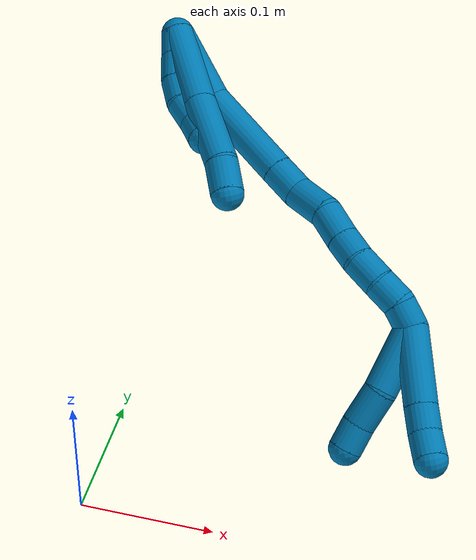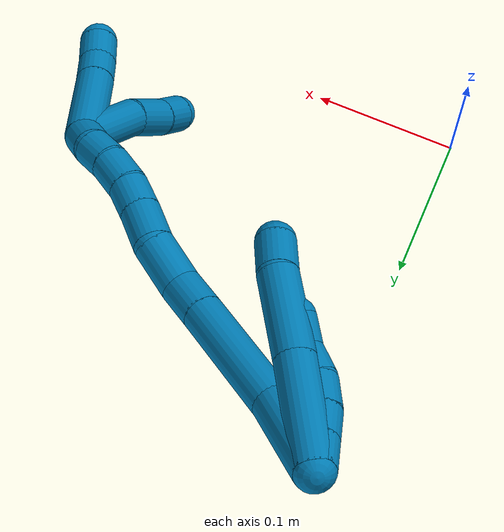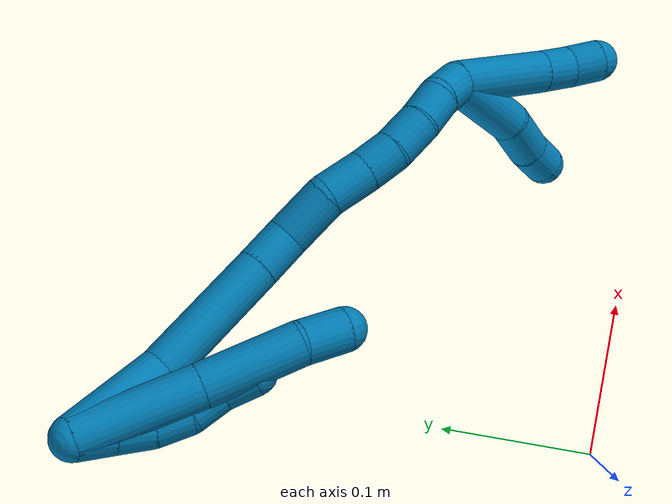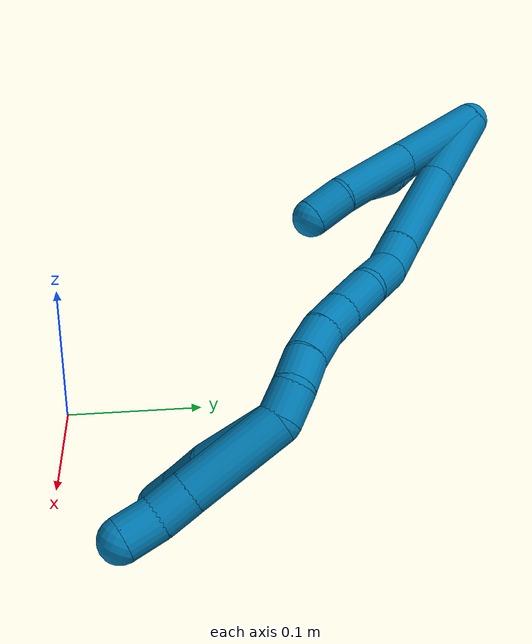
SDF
<sdf version="1.7">
 <world name="default">
  <model name="9">
   <static>0</static>
   <link name="9">
    <collision name="collision-cylinder-e_1_2_8">
     <pose>0.022531 -0.000715 -0.025403 3.11345 0.725353 3.06746</pose>
     <geometry><cylinder><radius>0.0125</radius><length>0.067925</length></cylinder></geometry>
     <surface>
      <friction><ode><mu>1.16</mu><mu2>1.16</mu2><slip1>0</slip1><slip2>0</slip2></ode></friction>
      <contact><ode><kp>1e+06</kp><kd>1</kd><max_vel>0</max_vel><min_depth>0.001</min_depth></ode></contact>
     </surface>
    </collision>
    <visual name="visual-cylinder-e_1_2_8">
     <pose>0.022531 -0.000715 -0.025403 3.11345 0.725353 3.06746</pose>
     <geometry><cylinder><radius>0.0125</radius><length>0.067925</length></cylinder></geometry>
     <material><ambient>0 0.490196 0.709804 1</ambient></material>
    </visual>
    <collision name="collision-cylinder-e_2_8_9">
     <pose>0.064235 -0.001221 -0.071477 -3.13146 0.747787 -3.11577</pose>
     <geometry><cylinder><radius>0.0125</radius><length>0.05639</length></cylinder></geometry>
     <surface>
      <friction><ode><mu>1.16</mu><mu2>1.16</mu2><slip1>0</slip1><slip2>0</slip2></ode></friction>
      <contact><ode><kp>1e+06</kp><kd>1</kd><max_vel>0</max_vel><min_depth>0.001</min_depth></ode></contact>
     </surface>
    </collision>
    <visual name="visual-cylinder-e_2_8_9">
     <pose>0.064235 -0.001221 -0.071477 -3.13146 0.747787 -3.11577</pose>
     <geometry><cylinder><radius>0.0125</radius><length>0.05639</length></cylinder></geometry>
     <material><ambient>0 0.490196 0.709804 1</ambient></material>
    </visual>
    <collision name="collision-cylinder-e_3_9_6">
     <pose>0.090281 -0.002348 -0.102914 3.01806 0.564794 2.7216</pose>
     <geometry><cylinder><radius>0.0125</radius><length>0.025685</length></cylinder></geometry>
     <surface>
      <friction><ode><mu>1.16</mu><mu2>1.16</mu2><slip1>0</slip1><slip2>0</slip2></ode></friction>
      <contact><ode><kp>1e+06</kp><kd>1</kd><max_vel>0</max_vel><min_depth>0.001</min_depth></ode></contact>
     </surface>
    </collision>
    <visual name="visual-cylinder-e_3_9_6">
     <pose>0.090281 -0.002348 -0.102914 3.01806 0.564794 2.7216</pose>
     <geometry><cylinder><radius>0.0125</radius><length>0.025685</length></cylinder></geometry>
     <material><ambient>0 0.490196 0.709804 1</ambient></material>
    </visual>
    <collision name="collision-cylinder-e_1_2_10">
     <pose>0.004819 -0.002558 -0.008381 2.84537 0.502844 2.08909</pose>
     <geometry><cylinder><radius>0.0125</radius><length>0.02</length></cylinder></geometry>
     <surface>
      <friction><ode><mu>1.16</mu><mu2>1.16</mu2><slip1>0</slip1><slip2>0</slip2></ode></friction>
      <contact><ode><kp>1e+06</kp><kd>1</kd><max_vel>0</max_vel><min_depth>0.001</min_depth></ode></contact>
     </surface>
    </collision>
    <visual name="visual-cylinder-e_1_2_10">
     <pose>0.004819 -0.002558 -0.008381 2.84537 0.502844 2.08909</pose>
     <geometry><cylinder><radius>0.0125</radius><length>0.02</length></cylinder></geometry>
     <material><ambient>0 0.490196 0.709804 1</ambient></material>
    </visual>
    <collision name="collision-cylinder-e_2_10_11">
     <pose>0.014606 -0.007721 -0.025039 2.83671 0.519914 2.09399</pose>
     <geometry><cylinder><radius>0.0125</radius><length>0.02</length></cylinder></geometry>
     <surface>
      <friction><ode><mu>1.16</mu><mu2>1.16</mu2><slip1>0</slip1><slip2>0</slip2></ode></friction>
      <contact><ode><kp>1e+06</kp><kd>1</kd><max_vel>0</max_vel><min_depth>0.001</min_depth></ode></contact>
     </surface>
    </collision>
    <visual name="visual-cylinder-e_2_10_11">
     <pose>0.014606 -0.007721 -0.025039 2.83671 0.519914 2.09399</pose>
     <geometry><cylinder><radius>0.0125</radius><length>0.02</length></cylinder></geometry>
     <material><ambient>0 0.490196 0.709804 1</ambient></material>
    </visual>
    <collision name="collision-cylinder-e_3_11_12">
     <pose>0.02585 -0.010964 -0.041078 3.05959 0.678375 2.91009</pose>
     <geometry><cylinder><radius>0.0125</radius><length>0.02</length></cylinder></geometry>
     <surface>
      <friction><ode><mu>1.16</mu><mu2>1.16</mu2><slip1>0</slip1><slip2>0</slip2></ode></friction>
      <contact><ode><kp>1e+06</kp><kd>1</kd><max_vel>0</max_vel><min_depth>0.001</min_depth></ode></contact>
     </surface>
    </collision>
    <visual name="visual-cylinder-e_3_11_12">
     <pose>0.02585 -0.010964 -0.041078 3.05959 0.678375 2.91009</pose>
     <geometry><cylinder><radius>0.0125</radius><length>0.02</length></cylinder></geometry>
     <material><ambient>0 0.490196 0.709804 1</ambient></material>
    </visual>
    <collision name="collision-cylinder-e_4_12_13">
     <pose>0.038546 -0.009276 -0.056143 -2.83339 0.697185 -2.33377</pose>
     <geometry><cylinder><radius>0.0125</radius><length>0.02</length></cylinder></geometry>
     <surface>
      <friction><ode><mu>1.16</mu><mu2>1.16</mu2><slip1>0</slip1><slip2>0</slip2></ode></friction>
      <contact><ode><kp>1e+06</kp><kd>1</kd><max_vel>0</max_vel><min_depth>0.001</min_depth></ode></contact>
     </surface>
    </collision>
    <visual name="visual-cylinder-e_4_12_13">
     <pose>0.038546 -0.009276 -0.056143 -2.83339 0.697185 -2.33377</pose>
     <geometry><cylinder><radius>0.0125</radius><length>0.02</length></cylinder></geometry>
     <material><ambient>0 0.490196 0.709804 1</ambient></material>
    </visual>
    <collision name="collision-cylinder-e_5_13_5">
     <pose>0.053344 -0.006512 -0.068891 -3.06131 0.993158 -2.99363</pose>
     <geometry><cylinder><radius>0.0125</radius><length>0.02</length></cylinder></geometry>
     <surface>
      <friction><ode><mu>1.16</mu><mu2>1.16</mu2><slip1>0</slip1><slip2>0</slip2></ode></friction>
      <contact><ode><kp>1e+06</kp><kd>1</kd><max_vel>0</max_vel><min_depth>0.001</min_depth></ode></contact>
     </surface>
    </collision>
    <visual name="visual-cylinder-e_5_13_5">
     <pose>0.053344 -0.006512 -0.068891 -3.06131 0.993158 -2.99363</pose>
     <geometry><cylinder><radius>0.0125</radius><length>0.02</length></cylinder></geometry>
     <material><ambient>0 0.490196 0.709804 1</ambient></material>
    </visual>
    <collision name="collision-cylinder-e_1_2_14">
     <pose>0.011045 0.006668 -0.026249 -2.89284 0.387225 -2.0063</pose>
     <geometry><cylinder><radius>0.0125</radius><length>0.058496</length></cylinder></geometry>
     <surface>
      <friction><ode><mu>1.16</mu><mu2>1.16</mu2><slip1>0</slip1><slip2>0</slip2></ode></friction>
      <contact><ode><kp>1e+06</kp><kd>1</kd><max_vel>0</max_vel><min_depth>0.001</min_depth></ode></contact>
     </surface>
    </collision>
    <visual name="visual-cylinder-e_1_2_14">
     <pose>0.011045 0.006668 -0.026249 -2.89284 0.387225 -2.0063</pose>
     <geometry><cylinder><radius>0.0125</radius><length>0.058496</length></cylinder></geometry>
     <material><ambient>0 0.490196 0.709804 1</ambient></material>
    </visual>
    <collision name="collision-cylinder-e_2_14_15">
     <pose>0.042125 0.028294 -0.08081 -2.65551 0.559107 -1.71681</pose>
     <geometry><cylinder><radius>0.0125</radius><length>0.075546</length></cylinder></geometry>
     <surface>
      <friction><ode><mu>1.16</mu><mu2>1.16</mu2><slip1>0</slip1><slip2>0</slip2></ode></friction>
      <contact><ode><kp>1e+06</kp><kd>1</kd><max_vel>0</max_vel><min_depth>0.001</min_depth></ode></contact>
     </surface>
    </collision>
    <visual name="visual-cylinder-e_2_14_15">
     <pose>0.042125 0.028294 -0.08081 -2.65551 0.559107 -1.71681</pose>
     <geometry><cylinder><radius>0.0125</radius><length>0.075546</length></cylinder></geometry>
     <material><ambient>0 0.490196 0.709804 1</ambient></material>
    </visual>
    <collision name="collision-cylinder-e_3_15_16">
     <pose>0.068608 0.048255 -0.118278 -2.64168 0.553517 -1.67731</pose>
     <geometry><cylinder><radius>0.0125</radius><length>0.024529</length></cylinder></geometry>
     <surface>
      <friction><ode><mu>1.16</mu><mu2>1.16</mu2><slip1>0</slip1><slip2>0</slip2></ode></friction>
      <contact><ode><kp>1e+06</kp><kd>1</kd><max_vel>0</max_vel><min_depth>0.001</min_depth></ode></contact>
     </surface>
    </collision>
    <visual name="visual-cylinder-e_3_15_16">
     <pose>0.068608 0.048255 -0.118278 -2.64168 0.553517 -1.67731</pose>
     <geometry><cylinder><radius>0.0125</radius><length>0.024529</length></cylinder></geometry>
     <material><ambient>0 0.490196 0.709804 1</ambient></material>
    </visual>
    <collision name="collision-cylinder-e_4_16_17">
     <pose>0.086747 0.059568 -0.135243 -2.46175 0.861224 -1.82941</pose>
     <geometry><cylinder><radius>0.0125</radius><length>0.030822</length></cylinder></geometry>
     <surface>
      <friction><ode><mu>1.16</mu><mu2>1.16</mu2><slip1>0</slip1><slip2>0</slip2></ode></friction>
      <contact><ode><kp>1e+06</kp><kd>1</kd><max_vel>0</max_vel><min_depth>0.001</min_depth></ode></contact>
     </surface>
    </collision>
    <visual name="visual-cylinder-e_4_16_17">
     <pose>0.086747 0.059568 -0.135243 -2.46175 0.861224 -1.82941</pose>
     <geometry><cylinder><radius>0.0125</radius><length>0.030822</length></cylinder></geometry>
     <material><ambient>0 0.490196 0.709804 1</ambient></material>
    </visual>
    <collision name="collision-cylinder-e_5_17_18">
     <pose>0.106732 0.068417 -0.152624 -2.88259 0.697167 -2.45342</pose>
     <geometry><cylinder><radius>0.0125</radius><length>0.025834</length></cylinder></geometry>
     <surface>
      <friction><ode><mu>1.16</mu><mu2>1.16</mu2><slip1>0</slip1><slip2>0</slip2></ode></friction>
      <contact><ode><kp>1e+06</kp><kd>1</kd><max_vel>0</max_vel><min_depth>0.001</min_depth></ode></contact>
     </surface>
    </collision>
    <visual name="visual-cylinder-e_5_17_18">
     <pose>0.106732 0.068417 -0.152624 -2.88259 0.697167 -2.45342</pose>
     <geometry><cylinder><radius>0.0125</radius><length>0.025834</length></cylinder></geometry>
     <material><ambient>0 0.490196 0.709804 1</ambient></material>
    </visual>
    <collision name="collision-cylinder-e_6_18_19">
     <pose>0.121839 0.073545 -0.16957 -2.80347 0.71704 -2.28673</pose>
     <geometry><cylinder><radius>0.0125</radius><length>0.020737</length></cylinder></geometry>
     <surface>
      <friction><ode><mu>1.16</mu><mu2>1.16</mu2><slip1>0</slip1><slip2>0</slip2></ode></friction>
      <contact><ode><kp>1e+06</kp><kd>1</kd><max_vel>0</max_vel><min_depth>0.001</min_depth></ode></contact>
     </surface>
    </collision>
    <visual name="visual-cylinder-e_6_18_19">
     <pose>0.121839 0.073545 -0.16957 -2.80347 0.71704 -2.28673</pose>
     <geometry><cylinder><radius>0.0125</radius><length>0.020737</length></cylinder></geometry>
     <material><ambient>0 0.490196 0.709804 1</ambient></material>
    </visual>
    <collision name="collision-cylinder-e_7_19_20">
     <pose>0.135057 0.080717 -0.18545 -2.64784 0.585339 -1.74853</pose>
     <geometry><cylinder><radius>0.0125</radius><length>0.023182</length></cylinder></geometry>
     <surface>
      <friction><ode><mu>1.16</mu><mu2>1.16</mu2><slip1>0</slip1><slip2>0</slip2></ode></friction>
      <contact><ode><kp>1e+06</kp><kd>1</kd><max_vel>0</max_vel><min_depth>0.001</min_depth></ode></contact>
     </surface>
    </collision>
    <visual name="visual-cylinder-e_7_19_20">
     <pose>0.135057 0.080717 -0.18545 -2.64784 0.585339 -1.74853</pose>
     <geometry><cylinder><radius>0.0125</radius><length>0.023182</length></cylinder></geometry>
     <material><ambient>0 0.490196 0.709804 1</ambient></material>
    </visual>
    <collision name="collision-cylinder-e_8_20_21">
     <pose>0.145696 0.09004 -0.202078 -2.61282 0.423124 -1.34133</pose>
     <geometry><cylinder><radius>0.0125</radius><length>0.020629</length></cylinder></geometry>
     <surface>
      <friction><ode><mu>1.16</mu><mu2>1.16</mu2><slip1>0</slip1><slip2>0</slip2></ode></friction>
      <contact><ode><kp>1e+06</kp><kd>1</kd><max_vel>0</max_vel><min_depth>0.001</min_depth></ode></contact>
     </surface>
    </collision>
    <visual name="visual-cylinder-e_8_20_21">
     <pose>0.145696 0.09004 -0.202078 -2.61282 0.423124 -1.34133</pose>
     <geometry><cylinder><radius>0.0125</radius><length>0.020629</length></cylinder></geometry>
     <material><ambient>0 0.490196 0.709804 1</ambient></material>
    </visual>
    <collision name="collision-cylinder-e_9_21_1">
     <pose>0.152426 0.0972 -0.219695 -2.8926 0.249311 -1.5721</pose>
     <geometry><cylinder><radius>0.0125</radius><length>0.020225</length></cylinder></geometry>
     <surface>
      <friction><ode><mu>1.16</mu><mu2>1.16</mu2><slip1>0</slip1><slip2>0</slip2></ode></friction>
      <contact><ode><kp>1e+06</kp><kd>1</kd><max_vel>0</max_vel><min_depth>0.001</min_depth></ode></contact>
     </surface>
    </collision>
    <visual name="visual-cylinder-e_9_21_1">
     <pose>0.152426 0.0972 -0.219695 -2.8926 0.249311 -1.5721</pose>
     <geometry><cylinder><radius>0.0125</radius><length>0.020225</length></cylinder></geometry>
     <material><ambient>0 0.490196 0.709804 1</ambient></material>
    </visual>
    <collision name="collision-cylinder-e_1_1_22">
     <pose>0.15646 0.083683 -0.248618 2.45467 0.061166 0.170669</pose>
     <geometry><cylinder><radius>0.0125</radius><length>0.050338</length></cylinder></geometry>
     <surface>
      <friction><ode><mu>1.16</mu><mu2>1.16</mu2><slip1>0</slip1><slip2>0</slip2></ode></friction>
      <contact><ode><kp>1e+06</kp><kd>1</kd><max_vel>0</max_vel><min_depth>0.001</min_depth></ode></contact>
     </surface>
    </collision>
    <visual name="visual-cylinder-e_1_1_22">
     <pose>0.15646 0.083683 -0.248618 2.45467 0.061166 0.170669</pose>
     <geometry><cylinder><radius>0.0125</radius><length>0.050338</length></cylinder></geometry>
     <material><ambient>0 0.490196 0.709804 1</ambient></material>
    </visual>
    <collision name="collision-cylinder-e_2_22_23">
     <pose>0.155465 0.058277 -0.278769 2.41812 -0.175205 -0.456141</pose>
     <geometry><cylinder><radius>0.0125</radius><length>0.02907</length></cylinder></geometry>
     <surface>
      <friction><ode><mu>1.16</mu><mu2>1.16</mu2><slip1>0</slip1><slip2>0</slip2></ode></friction>
      <contact><ode><kp>1e+06</kp><kd>1</kd><max_vel>0</max_vel><min_depth>0.001</min_depth></ode></contact>
     </surface>
    </collision>
    <visual name="visual-cylinder-e_2_22_23">
     <pose>0.155465 0.058277 -0.278769 2.41812 -0.175205 -0.456141</pose>
     <geometry><cylinder><radius>0.0125</radius><length>0.02907</length></cylinder></geometry>
     <material><ambient>0 0.490196 0.709804 1</ambient></material>
    </visual>
    <collision name="collision-cylinder-e_3_23_4">
     <pose>0.152333 0.042389 -0.297529 2.46776 -0.058105 -0.165552</pose>
     <geometry><cylinder><radius>0.0125</radius><length>0.020592</length></cylinder></geometry>
     <surface>
      <friction><ode><mu>1.16</mu><mu2>1.16</mu2><slip1>0</slip1><slip2>0</slip2></ode></friction>
      <contact><ode><kp>1e+06</kp><kd>1</kd><max_vel>0</max_vel><min_depth>0.001</min_depth></ode></contact>
     </surface>
    </collision>
    <visual name="visual-cylinder-e_3_23_4">
     <pose>0.152333 0.042389 -0.297529 2.46776 -0.058105 -0.165552</pose>
     <geometry><cylinder><radius>0.0125</radius><length>0.020592</length></cylinder></geometry>
     <material><ambient>0 0.490196 0.709804 1</ambient></material>
    </visual>
    <collision name="collision-cylinder-e_1_1_24">
     <pose>0.169083 0.094194 -0.25457 2.93116 0.499585 2.35664</pose>
     <geometry><cylinder><radius>0.0125</radius><length>0.059124</length></cylinder></geometry>
     <surface>
      <friction><ode><mu>1.16</mu><mu2>1.16</mu2><slip1>0</slip1><slip2>0</slip2></ode></friction>
      <contact><ode><kp>1e+06</kp><kd>1</kd><max_vel>0</max_vel><min_depth>0.001</min_depth></ode></contact>
     </surface>
    </collision>
    <visual name="visual-cylinder-e_1_1_24">
     <pose>0.169083 0.094194 -0.25457 2.93116 0.499585 2.35664</pose>
     <geometry><cylinder><radius>0.0125</radius><length>0.059124</length></cylinder></geometry>
     <material><ambient>0 0.490196 0.709804 1</ambient></material>
    </visual>
    <collision name="collision-cylinder-e_2_24_25">
     <pose>0.188244 0.087235 -0.288627 2.96615 0.515793 2.49794</pose>
     <geometry><cylinder><radius>0.0125</radius><length>0.020269</length></cylinder></geometry>
     <surface>
      <friction><ode><mu>1.16</mu><mu2>1.16</mu2><slip1>0</slip1><slip2>0</slip2></ode></friction>
      <contact><ode><kp>1e+06</kp><kd>1</kd><max_vel>0</max_vel><min_depth>0.001</min_depth></ode></contact>
     </surface>
    </collision>
    <visual name="visual-cylinder-e_2_24_25">
     <pose>0.188244 0.087235 -0.288627 2.96615 0.515793 2.49794</pose>
     <geometry><cylinder><radius>0.0125</radius><length>0.020269</length></cylinder></geometry>
     <material><ambient>0 0.490196 0.709804 1</ambient></material>
    </visual>
    <collision name="collision-cylinder-e_3_25_3">
     <pose>0.199831 0.084301 -0.305105 2.96456 0.693811 2.66014</pose>
     <geometry><cylinder><radius>0.0125</radius><length>0.020607</length></cylinder></geometry>
     <surface>
      <friction><ode><mu>1.16</mu><mu2>1.16</mu2><slip1>0</slip1><slip2>0</slip2></ode></friction>
      <contact><ode><kp>1e+06</kp><kd>1</kd><max_vel>0</max_vel><min_depth>0.001</min_depth></ode></contact>
     </surface>
    </collision>
    <visual name="visual-cylinder-e_3_25_3">
     <pose>0.199831 0.084301 -0.305105 2.96456 0.693811 2.66014</pose>
     <geometry><cylinder><radius>0.0125</radius><length>0.020607</length></cylinder></geometry>
     <material><ambient>0 0.490196 0.709804 1</ambient></material>
    </visual>
    <collision name="collision-sphere-3">
     <pose>0.20642 0.082906 -0.312903 0 -0 0</pose>
     <geometry><sphere><radius>0.0125</radius></sphere></geometry>
     <surface>
      <friction><ode><mu>1.16</mu><mu2>1.16</mu2><slip1>0</slip1><slip2>0</slip2></ode></friction>
      <contact><ode><kp>1e+06</kp><kd>1</kd><max_vel>0</max_vel><min_depth>0.001</min_depth></ode></contact>
     </surface>
    </collision>
    <visual name="visual-sphere-3">
     <pose>0.20642 0.082906 -0.312903 0 -0 0</pose>
     <geometry><sphere><radius>0.0125</radius></sphere></geometry>
     <material><ambient>0 0.490196 0.709804 1</ambient></material>
    </visual>
    <collision name="collision-sphere-25">
     <pose>0.193242 0.085696 -0.297308 0 -0 0</pose>
     <geometry><sphere><radius>0.0125</radius></sphere></geometry>
     <surface>
      <friction><ode><mu>1.16</mu><mu2>1.16</mu2><slip1>0</slip1><slip2>0</slip2></ode></friction>
      <contact><ode><kp>1e+06</kp><kd>1</kd><max_vel>0</max_vel><min_depth>0.001</min_depth></ode></contact>
     </surface>
    </collision>
    <visual name="visual-sphere-25">
     <pose>0.193242 0.085696 -0.297308 0 -0 0</pose>
     <geometry><sphere><radius>0.0125</radius></sphere></geometry>
     <material><ambient>0 0.490196 0.709804 1</ambient></material>
    </visual>
    <collision name="collision-sphere-24">
     <pose>0.183245 0.088774 -0.279946 0 -0 0</pose>
     <geometry><sphere><radius>0.0125</radius></sphere></geometry>
     <surface>
      <friction><ode><mu>1.16</mu><mu2>1.16</mu2><slip1>0</slip1><slip2>0</slip2></ode></friction>
      <contact><ode><kp>1e+06</kp><kd>1</kd><max_vel>0</max_vel><min_depth>0.001</min_depth></ode></contact>
     </surface>
    </collision>
    <visual name="visual-sphere-24">
     <pose>0.183245 0.088774 -0.279946 0 -0 0</pose>
     <geometry><sphere><radius>0.0125</radius></sphere></geometry>
     <material><ambient>0 0.490196 0.709804 1</ambient></material>
    </visual>
    <collision name="collision-sphere-4">
     <pose>0.151735 0.035975 -0.305561 0 -0 0</pose>
     <geometry><sphere><radius>0.0125</radius></sphere></geometry>
     <surface>
      <friction><ode><mu>1.16</mu><mu2>1.16</mu2><slip1>0</slip1><slip2>0</slip2></ode></friction>
      <contact><ode><kp>1e+06</kp><kd>1</kd><max_vel>0</max_vel><min_depth>0.001</min_depth></ode></contact>
     </surface>
    </collision>
    <visual name="visual-sphere-4">
     <pose>0.151735 0.035975 -0.305561 0 -0 0</pose>
     <geometry><sphere><radius>0.0125</radius></sphere></geometry>
     <material><ambient>0 0.490196 0.709804 1</ambient></material>
    </visual>
    <collision name="collision-sphere-23">
     <pose>0.152931 0.048802 -0.289496 0 -0 0</pose>
     <geometry><sphere><radius>0.0125</radius></sphere></geometry>
     <surface>
      <friction><ode><mu>1.16</mu><mu2>1.16</mu2><slip1>0</slip1><slip2>0</slip2></ode></friction>
      <contact><ode><kp>1e+06</kp><kd>1</kd><max_vel>0</max_vel><min_depth>0.001</min_depth></ode></contact>
     </surface>
    </collision>
    <visual name="visual-sphere-23">
     <pose>0.152931 0.048802 -0.289496 0 -0 0</pose>
     <geometry><sphere><radius>0.0125</radius></sphere></geometry>
     <material><ambient>0 0.490196 0.709804 1</ambient></material>
    </visual>
    <collision name="collision-sphere-22">
     <pose>0.157998 0.067752 -0.268042 0 -0 0</pose>
     <geometry><sphere><radius>0.0125</radius></sphere></geometry>
     <surface>
      <friction><ode><mu>1.16</mu><mu2>1.16</mu2><slip1>0</slip1><slip2>0</slip2></ode></friction>
      <contact><ode><kp>1e+06</kp><kd>1</kd><max_vel>0</max_vel><min_depth>0.001</min_depth></ode></contact>
     </surface>
    </collision>
    <visual name="visual-sphere-22">
     <pose>0.157998 0.067752 -0.268042 0 -0 0</pose>
     <geometry><sphere><radius>0.0125</radius></sphere></geometry>
     <material><ambient>0 0.490196 0.709804 1</ambient></material>
    </visual>
    <collision name="collision-sphere-1">
     <pose>0.154921 0.099614 -0.229193 0 -0 0</pose>
     <geometry><sphere><radius>0.0125</radius></sphere></geometry>
     <surface>
      <friction><ode><mu>1.16</mu><mu2>1.16</mu2><slip1>0</slip1><slip2>0</slip2></ode></friction>
      <contact><ode><kp>1e+06</kp><kd>1</kd><max_vel>0</max_vel><min_depth>0.001</min_depth></ode></contact>
     </surface>
    </collision>
    <visual name="visual-sphere-1">
     <pose>0.154921 0.099614 -0.229193 0 -0 0</pose>
     <geometry><sphere><radius>0.0125</radius></sphere></geometry>
     <material><ambient>0 0.490196 0.709804 1</ambient></material>
    </visual>
    <collision name="collision-sphere-21">
     <pose>0.149931 0.094785 -0.210198 0 -0 0</pose>
     <geometry><sphere><radius>0.0125</radius></sphere></geometry>
     <surface>
      <friction><ode><mu>1.16</mu><mu2>1.16</mu2><slip1>0</slip1><slip2>0</slip2></ode></friction>
      <contact><ode><kp>1e+06</kp><kd>1</kd><max_vel>0</max_vel><min_depth>0.001</min_depth></ode></contact>
     </surface>
    </collision>
    <visual name="visual-sphere-21">
     <pose>0.149931 0.094785 -0.210198 0 -0 0</pose>
     <geometry><sphere><radius>0.0125</radius></sphere></geometry>
     <material><ambient>0 0.490196 0.709804 1</ambient></material>
    </visual>
    <collision name="collision-sphere-11">
     <pose>0.019574 -0.010326 -0.033318 0 -0 0</pose>
     <geometry><sphere><radius>0.0125</radius></sphere></geometry>
     <surface>
      <friction><ode><mu>1.16</mu><mu2>1.16</mu2><slip1>0</slip1><slip2>0</slip2></ode></friction>
      <contact><ode><kp>1e+06</kp><kd>1</kd><max_vel>0</max_vel><min_depth>0.001</min_depth></ode></contact>
     </surface>
    </collision>
    <visual name="visual-sphere-11">
     <pose>0.019574 -0.010326 -0.033318 0 -0 0</pose>
     <geometry><sphere><radius>0.0125</radius></sphere></geometry>
     <material><ambient>0 0.490196 0.709804 1</ambient></material>
    </visual>
    <collision name="collision-sphere-10">
     <pose>0.009638 -0.005116 -0.016761 0 -0 0</pose>
     <geometry><sphere><radius>0.0125</radius></sphere></geometry>
     <surface>
      <friction><ode><mu>1.16</mu><mu2>1.16</mu2><slip1>0</slip1><slip2>0</slip2></ode></friction>
      <contact><ode><kp>1e+06</kp><kd>1</kd><max_vel>0</max_vel><min_depth>0.001</min_depth></ode></contact>
     </surface>
    </collision>
    <visual name="visual-sphere-10">
     <pose>0.009638 -0.005116 -0.016761 0 -0 0</pose>
     <geometry><sphere><radius>0.0125</radius></sphere></geometry>
     <material><ambient>0 0.490196 0.709804 1</ambient></material>
    </visual>
    <collision name="collision-sphere-6">
     <pose>0.097155 -0.003685 -0.113679 0 -0 0</pose>
     <geometry><sphere><radius>0.0125</radius></sphere></geometry>
     <surface>
      <friction><ode><mu>1.16</mu><mu2>1.16</mu2><slip1>0</slip1><slip2>0</slip2></ode></friction>
      <contact><ode><kp>1e+06</kp><kd>1</kd><max_vel>0</max_vel><min_depth>0.001</min_depth></ode></contact>
     </surface>
    </collision>
    <visual name="visual-sphere-6">
     <pose>0.097155 -0.003685 -0.113679 0 -0 0</pose>
     <geometry><sphere><radius>0.0125</radius></sphere></geometry>
     <material><ambient>0 0.490196 0.709804 1</ambient></material>
    </visual>
    <collision name="collision-sphere-9">
     <pose>0.083408 -0.001011 -0.092148 0 -0 0</pose>
     <geometry><sphere><radius>0.0125</radius></sphere></geometry>
     <surface>
      <friction><ode><mu>1.16</mu><mu2>1.16</mu2><slip1>0</slip1><slip2>0</slip2></ode></friction>
      <contact><ode><kp>1e+06</kp><kd>1</kd><max_vel>0</max_vel><min_depth>0.001</min_depth></ode></contact>
     </surface>
    </collision>
    <visual name="visual-sphere-9">
     <pose>0.083408 -0.001011 -0.092148 0 -0 0</pose>
     <geometry><sphere><radius>0.0125</radius></sphere></geometry>
     <material><ambient>0 0.490196 0.709804 1</ambient></material>
    </visual>
    <collision name="collision-sphere-2">
     <geometry><sphere><radius>0.0125</radius></sphere></geometry>
     <surface>
      <friction><ode><mu>1.16</mu><mu2>1.16</mu2><slip1>0</slip1><slip2>0</slip2></ode></friction>
      <contact><ode><kp>1e+06</kp><kd>1</kd><max_vel>0</max_vel><min_depth>0.001</min_depth></ode></contact>
     </surface>
    </collision>
    <visual name="visual-sphere-2">
     <geometry><sphere><radius>0.0125</radius></sphere></geometry>
     <material><ambient>0 0.490196 0.709804 1</ambient></material>
    </visual>
    <collision name="collision-sphere-19">
     <pose>0.128653 0.076138 -0.176943 0 -0 0</pose>
     <geometry><sphere><radius>0.0125</radius></sphere></geometry>
     <surface>
      <friction><ode><mu>1.16</mu><mu2>1.16</mu2><slip1>0</slip1><slip2>0</slip2></ode></friction>
      <contact><ode><kp>1e+06</kp><kd>1</kd><max_vel>0</max_vel><min_depth>0.001</min_depth></ode></contact>
     </surface>
    </collision>
    <visual name="visual-sphere-19">
     <pose>0.128653 0.076138 -0.176943 0 -0 0</pose>
     <geometry><sphere><radius>0.0125</radius></sphere></geometry>
     <material><ambient>0 0.490196 0.709804 1</ambient></material>
    </visual>
    <collision name="collision-sphere-8">
     <pose>0.045062 -0.00143 -0.050806 0 -0 0</pose>
     <geometry><sphere><radius>0.0125</radius></sphere></geometry>
     <surface>
      <friction><ode><mu>1.16</mu><mu2>1.16</mu2><slip1>0</slip1><slip2>0</slip2></ode></friction>
      <contact><ode><kp>1e+06</kp><kd>1</kd><max_vel>0</max_vel><min_depth>0.001</min_depth></ode></contact>
     </surface>
    </collision>
    <visual name="visual-sphere-8">
     <pose>0.045062 -0.00143 -0.050806 0 -0 0</pose>
     <geometry><sphere><radius>0.0125</radius></sphere></geometry>
     <material><ambient>0 0.490196 0.709804 1</ambient></material>
    </visual>
    <collision name="collision-sphere-12">
     <pose>0.032125 -0.011601 -0.048837 0 -0 0</pose>
     <geometry><sphere><radius>0.0125</radius></sphere></geometry>
     <surface>
      <friction><ode><mu>1.16</mu><mu2>1.16</mu2><slip1>0</slip1><slip2>0</slip2></ode></friction>
      <contact><ode><kp>1e+06</kp><kd>1</kd><max_vel>0</max_vel><min_depth>0.001</min_depth></ode></contact>
     </surface>
    </collision>
    <visual name="visual-sphere-12">
     <pose>0.032125 -0.011601 -0.048837 0 -0 0</pose>
     <geometry><sphere><radius>0.0125</radius></sphere></geometry>
     <material><ambient>0 0.490196 0.709804 1</ambient></material>
    </visual>
    <collision name="collision-sphere-13">
     <pose>0.044966 -0.00695 -0.063448 0 -0 0</pose>
     <geometry><sphere><radius>0.0125</radius></sphere></geometry>
     <surface>
      <friction><ode><mu>1.16</mu><mu2>1.16</mu2><slip1>0</slip1><slip2>0</slip2></ode></friction>
      <contact><ode><kp>1e+06</kp><kd>1</kd><max_vel>0</max_vel><min_depth>0.001</min_depth></ode></contact>
     </surface>
    </collision>
    <visual name="visual-sphere-13">
     <pose>0.044966 -0.00695 -0.063448 0 -0 0</pose>
     <geometry><sphere><radius>0.0125</radius></sphere></geometry>
     <material><ambient>0 0.490196 0.709804 1</ambient></material>
    </visual>
    <collision name="collision-sphere-5">
     <pose>0.061721 -0.006074 -0.074334 0 -0 0</pose>
     <geometry><sphere><radius>0.0125</radius></sphere></geometry>
     <surface>
      <friction><ode><mu>1.16</mu><mu2>1.16</mu2><slip1>0</slip1><slip2>0</slip2></ode></friction>
      <contact><ode><kp>1e+06</kp><kd>1</kd><max_vel>0</max_vel><min_depth>0.001</min_depth></ode></contact>
     </surface>
    </collision>
    <visual name="visual-sphere-5">
     <pose>0.061721 -0.006074 -0.074334 0 -0 0</pose>
     <geometry><sphere><radius>0.0125</radius></sphere></geometry>
     <material><ambient>0 0.490196 0.709804 1</ambient></material>
    </visual>
    <collision name="collision-sphere-14">
     <pose>0.022089 0.013335 -0.052497 0 -0 0</pose>
     <geometry><sphere><radius>0.0125</radius></sphere></geometry>
     <surface>
      <friction><ode><mu>1.16</mu><mu2>1.16</mu2><slip1>0</slip1><slip2>0</slip2></ode></friction>
      <contact><ode><kp>1e+06</kp><kd>1</kd><max_vel>0</max_vel><min_depth>0.001</min_depth></ode></contact>
     </surface>
    </collision>
    <visual name="visual-sphere-14">
     <pose>0.022089 0.013335 -0.052497 0 -0 0</pose>
     <geometry><sphere><radius>0.0125</radius></sphere></geometry>
     <material><ambient>0 0.490196 0.709804 1</ambient></material>
    </visual>
    <collision name="collision-sphere-15">
     <pose>0.062161 0.043254 -0.109122 0 -0 0</pose>
     <geometry><sphere><radius>0.0125</radius></sphere></geometry>
     <surface>
      <friction><ode><mu>1.16</mu><mu2>1.16</mu2><slip1>0</slip1><slip2>0</slip2></ode></friction>
      <contact><ode><kp>1e+06</kp><kd>1</kd><max_vel>0</max_vel><min_depth>0.001</min_depth></ode></contact>
     </surface>
    </collision>
    <visual name="visual-sphere-15">
     <pose>0.062161 0.043254 -0.109122 0 -0 0</pose>
     <geometry><sphere><radius>0.0125</radius></sphere></geometry>
     <material><ambient>0 0.490196 0.709804 1</ambient></material>
    </visual>
    <collision name="collision-sphere-16">
     <pose>0.075056 0.053256 -0.127435 0 -0 0</pose>
     <geometry><sphere><radius>0.0125</radius></sphere></geometry>
     <surface>
      <friction><ode><mu>1.16</mu><mu2>1.16</mu2><slip1>0</slip1><slip2>0</slip2></ode></friction>
      <contact><ode><kp>1e+06</kp><kd>1</kd><max_vel>0</max_vel><min_depth>0.001</min_depth></ode></contact>
     </surface>
    </collision>
    <visual name="visual-sphere-16">
     <pose>0.075056 0.053256 -0.127435 0 -0 0</pose>
     <geometry><sphere><radius>0.0125</radius></sphere></geometry>
     <material><ambient>0 0.490196 0.709804 1</ambient></material>
    </visual>
    <collision name="collision-sphere-17">
     <pose>0.098439 0.06588 -0.143051 0 -0 0</pose>
     <geometry><sphere><radius>0.0125</radius></sphere></geometry>
     <surface>
      <friction><ode><mu>1.16</mu><mu2>1.16</mu2><slip1>0</slip1><slip2>0</slip2></ode></friction>
      <contact><ode><kp>1e+06</kp><kd>1</kd><max_vel>0</max_vel><min_depth>0.001</min_depth></ode></contact>
     </surface>
    </collision>
    <visual name="visual-sphere-17">
     <pose>0.098439 0.06588 -0.143051 0 -0 0</pose>
     <geometry><sphere><radius>0.0125</radius></sphere></geometry>
     <material><ambient>0 0.490196 0.709804 1</ambient></material>
    </visual>
    <collision name="collision-sphere-18">
     <pose>0.115025 0.070953 -0.162197 0 -0 0</pose>
     <geometry><sphere><radius>0.0125</radius></sphere></geometry>
     <surface>
      <friction><ode><mu>1.16</mu><mu2>1.16</mu2><slip1>0</slip1><slip2>0</slip2></ode></friction>
      <contact><ode><kp>1e+06</kp><kd>1</kd><max_vel>0</max_vel><min_depth>0.001</min_depth></ode></contact>
     </surface>
    </collision>
    <visual name="visual-sphere-18">
     <pose>0.115025 0.070953 -0.162197 0 -0 0</pose>
     <geometry><sphere><radius>0.0125</radius></sphere></geometry>
     <material><ambient>0 0.490196 0.709804 1</ambient></material>
    </visual>
    <collision name="collision-sphere-20">
     <pose>0.14146 0.085296 -0.193957 0 -0 0</pose>
     <geometry><sphere><radius>0.0125</radius></sphere></geometry>
     <surface>
      <friction><ode><mu>1.16</mu><mu2>1.16</mu2><slip1>0</slip1><slip2>0</slip2></ode></friction>
      <contact><ode><kp>1e+06</kp><kd>1</kd><max_vel>0</max_vel><min_depth>0.001</min_depth></ode></contact>
     </surface>
    </collision>
    <visual name="visual-sphere-20">
     <pose>0.14146 0.085296 -0.193957 0 -0 0</pose>
     <geometry><sphere><radius>0.0125</radius></sphere></geometry>
     <material><ambient>0 0.490196 0.709804 1</ambient></material>
    </visual>
    <inertial>
     <pose>0.088487 0.039293 -0.135206 0 -0 0</pose>
     <mass>0.75</mass>
     <inertia>
      <ixx>-6.6e-05</ixx>
      <ixy>0</ixy>
      <ixz>0</ixz>
      <iyy>4.9e-05</iyy>
      <iyz>0</iyz>
      <izz>-0.000138</izz>
     </inertia>
    </inertial>
   </link>
   <pose>-0.008891 0.295597 0.212998 0.04104 -0.573048 -1.04005</pose>
  </model>
 </world>
</sdf>
